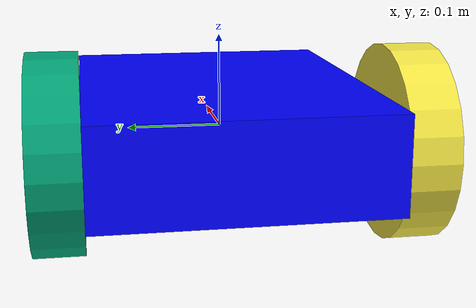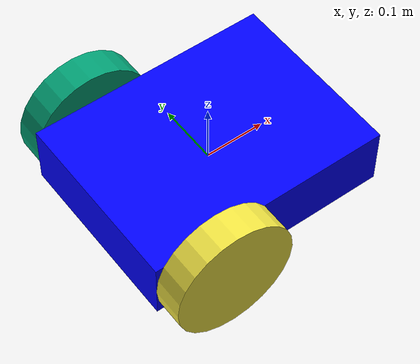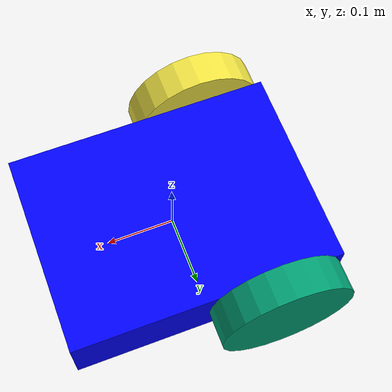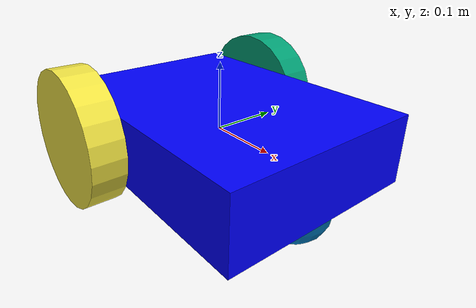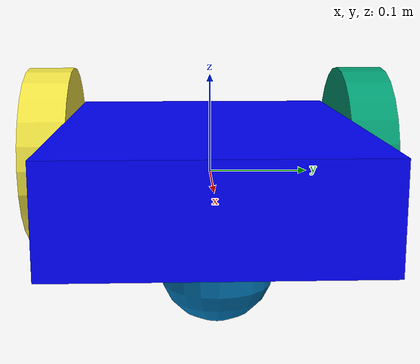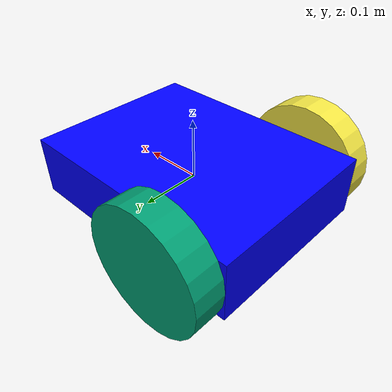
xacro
<?xml version="1.0"?>
<robot xmlns:xacro="http://www.ros.org/wiki/xacro" name="custom_mobile_robot">

  <!-- Dummy Root Link -->
  <link name="dummy"/>
  <joint name="dummy_joint" type="fixed">
    <parent link="dummy"/>
    <child link="base_link"/>
  </joint>

  <!-- Govde (Chassis) -->
  <link name="base_link">
    <visual>
      <geometry><box size="0.4 0.3 0.1"/></geometry>
      <material name="blue"><color rgba="0 0 1 1"/></material>
    </visual>
    <collision>
      <geometry><box size="0.4 0.3 0.1"/></geometry>
    </collision>
    <inertial>
      <mass value="5.0"/>
      <inertia ixx="0.1" ixy="0" ixz="0" iyy="0.1" iyz="0" izz="0.1"/>
    </inertial>
  </link>

  <!-- Tekerlek Makrosu -->
  <xacro:macro name="wheel" params="prefix y_reflect">
    <link name="${prefix}_wheel">
      <visual>
        <geometry><cylinder radius="0.1" length="0.05"/></geometry>
      </visual>
      <collision>
        <geometry><cylinder radius="0.1" length="0.05"/></geometry>
      </collision>
      <inertial>
        <mass value="1.0"/>
        <inertia ixx="0.01" ixy="0" ixz="0" iyy="0.01" iyz="0" izz="0.01"/>
      </inertial>
    </link>
    <joint name="${prefix}_wheel_joint" type="continuous">
      <parent link="base_link"/>
      <child link="${prefix}_wheel"/>
      <origin xyz="-0.1 ${y_reflect * 0.175} 0" rpy="-1.5707 0 0"/>
      <axis xyz="0 0 1"/>
    </joint>
  </xacro:macro>

  <xacro:wheel prefix="left" y_reflect="1"/>
  <xacro:wheel prefix="right" y_reflect="-1"/>

  <!-- Caster Tekerlek -->
  <link name="caster_wheel">
    <visual>
      <geometry><sphere radius="0.05"/></geometry>
    </visual>
    <collision>
      <geometry><sphere radius="0.05"/></geometry>
    </collision>
    <inertial>
      <mass value="0.5"/>
      <inertia ixx="0.001" ixy="0" ixz="0" iyy="0.001" iyz="0" izz="0.001"/>
    </inertial>
  </link>
  <joint name="caster_joint" type="fixed">
    <parent link="base_link"/>
    <child link="caster_wheel"/>
    <origin xyz="0.15 0 -0.05" rpy="0 0 0"/>
  </joint>

  <!-- PHYSICAL SENSOR LINKS & JOINTS -->

  <!-- IMU Link -->
  <link name="imu_link"/>
  <joint name="imu_joint" type="fixed">
    <parent link="base_link"/>
    <child link="imu_link"/>
    <origin xyz="0 0 0.05"/>
  </joint>

  <!-- Camera Link -->
  <link name="camera_link"/>
  <joint name="camera_joint" type="fixed">
    <parent link="base_link"/>
    <child link="camera_link"/>
    <origin xyz="0.2 0 0.05"/>
  </joint>

  <!-- Bumper Link -->
  <link name="bumper_link">
    <collision name="bumper_collision">
      <geometry><box size="0.02 0.3 0.1"/></geometry>
    </collision>
  </link>
  <joint name="bumper_joint" type="fixed">
    <parent link="base_link"/>
    <child link="bumper_link"/>
    <origin xyz="0.2 0 0"/>
  </joint>

  <!-- LiDAR Link (Restored) -->
  <link name="lidar_link"/>
  <joint name="lidar_joint" type="fixed">
    <parent link="base_link"/>
    <child link="lidar_link"/>
    <origin xyz="0.1 0 0.1" rpy="0 0 0"/>
  </joint>

  <!-- GAZEBO PLUGINS & SENSOR CONFIGURATIONS -->

  <!-- Gazebo Diferansiyel Surus -->
  <gazebo>
    <plugin filename="gz-sim-diff-drive-system" name="gz::sim::systems::DiffDrive">
      <left_joint>left_wheel_joint</left_joint>
      <right_joint>right_wheel_joint</right_joint>
      <wheel_separation>0.35</wheel_separation>
      <wheel_radius>0.1</wheel_radius>
      <topic>/cmd_vel</topic>
    </plugin>
  </gazebo>

  <!-- Gazebo Sensor Motoru -->
  <gazebo>
    <plugin filename="gz-sim-sensors-system" name="gz::sim::systems::Sensors">
      <render_engine>ogre2</render_engine>
    </plugin>
  </gazebo>

  <!-- LiDAR Sensor -->
  <gazebo reference="lidar_link">
    <sensor name="lidar" type="gpu_lidar">
      <update_rate>10</update_rate>
      <visualize>true</visualize>
      <topic>/scan</topic>
      <gz_frame_id>lidar_link</gz_frame_id>
      <ray>
        <scan>
          <horizontal><samples>360</samples><resolution>1</resolution><min_angle>-3.14</min_angle><max_angle>3.14</max_angle></horizontal>
        </scan>
        <range><min>0.1</min><max>10.0</max><resolution>0.01</resolution></range>
      </ray>
    </sensor>
  </gazebo>

  <!-- Kamera Sensor -->
  <gazebo reference="camera_link">
    <sensor name="camera" type="camera">
      <update_rate>30.0</update_rate>
      <always_on>true</always_on>
      <visualize>true</visualize>
      <topic>/camera/image_raw</topic>
      <camera>
        <horizontal_fov>1.3962634</horizontal_fov>
        <image>
          <width>640</width>
          <height>480</height>
          <format>R8G8B8</format>
        </image>
        <clip>
          <near>0.1</near>
          <far>100.0</far>
        </clip>
      </camera>
    </sensor>
  </gazebo>

  <!-- IMU Sensor -->
  <gazebo reference="imu_link">
    <sensor name="imu_sensor" type="imu">
      <always_on>true</always_on>
      <update_rate>100</update_rate>
      <visualize>true</visualize>
      <topic>/imu</topic>
    </sensor>
  </gazebo>

  <!-- Bumper Contact Sensor -->
  <gazebo reference="bumper_link">
    <sensor name="bumper_sensor" type="contact">
      <always_on>true</always_on>
      <update_rate>50.0</update_rate>
      <contact>
        <collision>bumper_collision</collision>
      </contact>
      <topic>/bumper_states</topic>
    </sensor>
  </gazebo>
<!-- Sonar / Range Sensor -->
<gazebo reference="sonar_link">
  <sensor name="sonar_sensor" type="ray">
    <always_on>true</always_on>
    <update_rate>10</update_rate>
    <visualize>true</visualize>
    <topic>/sonar/range</topic>
    <ray>
      <scan>
        <horizontal>
          <samples>5</samples>
          <resolution>1</resolution>
          <min_angle>-0.1</min_angle>
          <max_angle>0.1</max_angle>
        </horizontal>
      </scan>
      <range>
        <min>0.05</min>
        <max>2.0</max>
      </range>
    </ray>
    <plugin name="gazebo_ros_sonar_controller" filename="libgazebo_ros_ray_sensor.so">
        <ros>
          <remapping>~/out:=/sonar/range</remapping>
        </ros>
        <output_type>sensor_msgs/Range</output_type>
        <radiation_type>ultrasound</radiation_type>
        <frame_name>sonar_link</frame_name>
      </plugin>
  </sensor>
</gazebo>
</robot>
